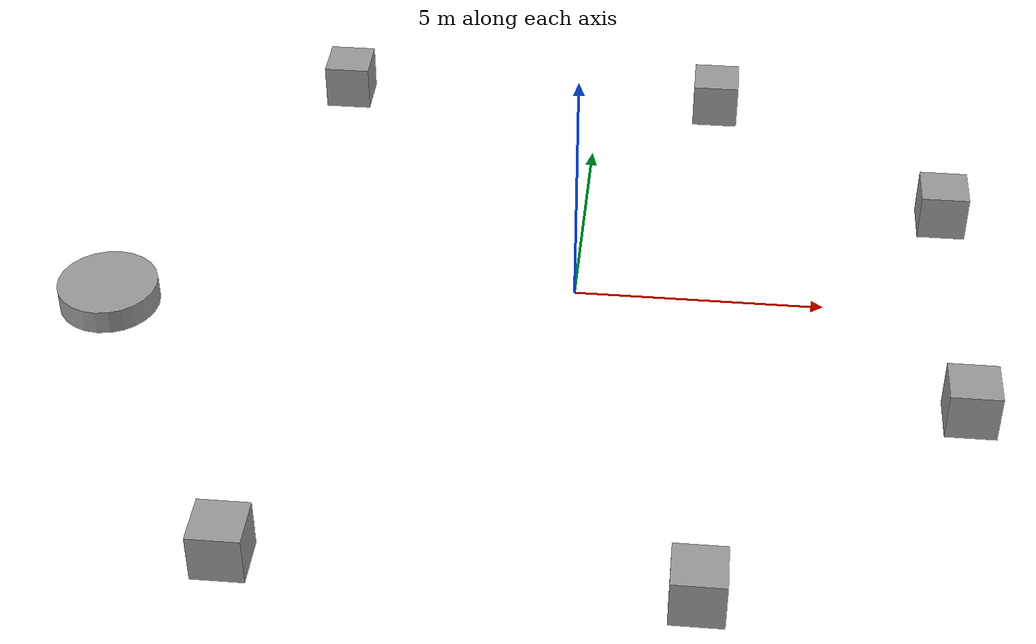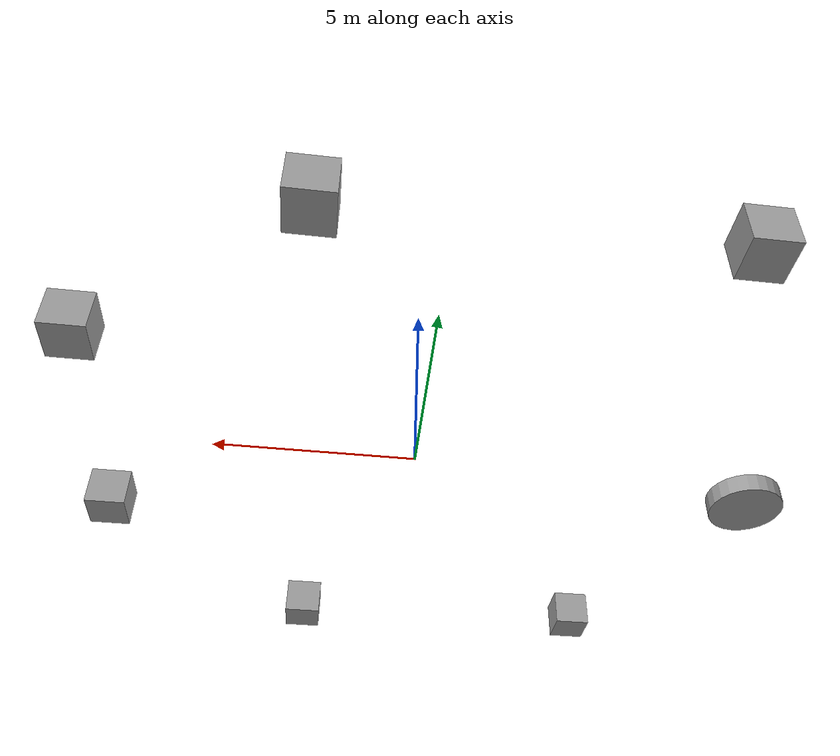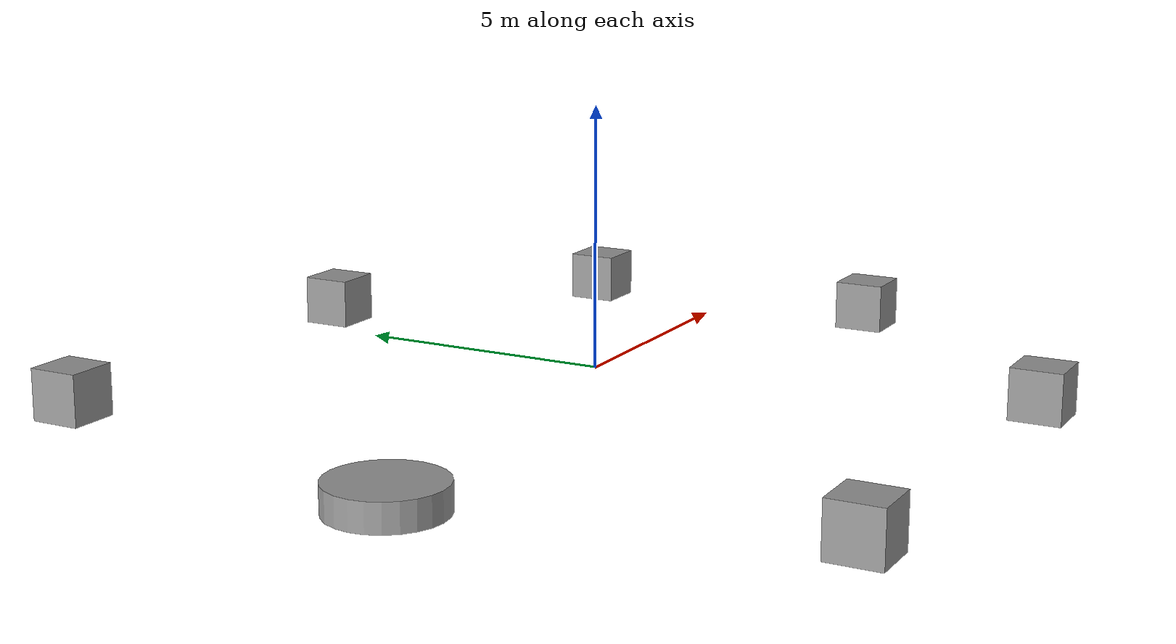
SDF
<?xml version='1.0'?>
<sdf version='1.6'>
  <model name='pickup_points'>
    <link name='link_0'>
      <pose frame=''>-9.23896 -1.4112 0.428571 0 -0 0</pose>
      <inertial>
        <mass>1</mass>
        <inertia>
          <ixx>0.145833</ixx>
          <ixy>0</ixy>
          <ixz>0</ixz>
          <iyy>0.145833</iyy>
          <iyz>0</iyz>
          <izz>0.125</izz>
        </inertia>
        <pose frame=''>0 0 0 0 -0 0</pose>
      </inertial>
      <gravity>1</gravity>
      <self_collide>0</self_collide>
      <kinematic>0</kinematic>
      <visual name='visual'>
        <pose frame=''>0 0 0 0 -0 0</pose>
        <geometry>
          <cylinder>
            <radius>1</radius>
            <length>0.5</length>
          </cylinder>
        </geometry>
        <material>
          <lighting>1</lighting>
          <script>
            <uri>file://media/materials/scripts/gazebo.material</uri>
            <name>Gazebo/Grey</name>
          </script>
          <shader type='pixel'>
            <normal_map>__default__</normal_map>
          </shader>
          <ambient>0.3 0.3 0.3 1</ambient>
          <diffuse>0.7 0.7 0.7 1</diffuse>
          <specular>0.01 0.01 0.01 1</specular>
          <emissive>0 0 0 1</emissive>
        </material>
        <transparency>0</transparency>
        <cast_shadows>1</cast_shadows>
      </visual>
      <collision name='collision'>
        <laser_retro>0</laser_retro>
        <max_contacts>10</max_contacts>
        <pose frame=''>0 0 0 0 -0 0</pose>
        <geometry>
          <cylinder>
            <radius>1</radius>
            <length>0.5</length>
          </cylinder>
        </geometry>
        <surface>
          <friction>
            <ode>
              <mu>1</mu>
              <mu2>1</mu2>
              <fdir1>0 0 0</fdir1>
              <slip1>0</slip1>
              <slip2>0</slip2>
            </ode>
            <torsional>
              <coefficient>1</coefficient>
              <patch_radius>0</patch_radius>
              <surface_radius>0</surface_radius>
              <use_patch_radius>1</use_patch_radius>
              <ode>
                <slip>0</slip>
              </ode>
            </torsional>
          </friction>
          <bounce>
            <restitution_coefficient>0</restitution_coefficient>
            <threshold>1e+06</threshold>
          </bounce>
          <contact>
            <collide_without_contact>0</collide_without_contact>
            <collide_without_contact_bitmask>1</collide_without_contact_bitmask>
            <collide_bitmask>1</collide_bitmask>
            <ode>
              <soft_cfm>0</soft_cfm>
              <soft_erp>0.2</soft_erp>
              <kp>1e+13</kp>
              <kd>1</kd>
              <max_vel>0.01</max_vel>
              <min_depth>0</min_depth>
            </ode>
            <bullet>
              <split_impulse>1</split_impulse>
              <split_impulse_penetration_threshold>-0.01</split_impulse_penetration_threshold>
              <soft_cfm>0</soft_cfm>
              <soft_erp>0.2</soft_erp>
              <kp>1e+13</kp>
              <kd>1</kd>
            </bullet>
          </contact>
        </surface>
      </collision>
    </link>
    <link name='link_1_clone_3_clone'>
      <pose frame=''>2.74859 -7.82521 -0.071429 0 -0 0</pose>
      <inertial>
        <mass>1</mass>
        <inertia>
          <ixx>0.166667</ixx>
          <ixy>0</ixy>
          <ixz>0</ixz>
          <iyy>0.166667</iyy>
          <iyz>0</iyz>
          <izz>0.166667</izz>
        </inertia>
        <pose frame=''>0 0 0 0 -0 0</pose>
      </inertial>
      <self_collide>0</self_collide>
      <kinematic>0</kinematic>
      <visual name='visual'>
        <pose frame=''>0 0 0 0 -0 0</pose>
        <geometry>
          <box>
            <size>1 1 1</size>
          </box>
        </geometry>
        <material>
          <lighting>1</lighting>
          <script>
            <uri>file://media/materials/scripts/gazebo.material</uri>
            <name>Gazebo/Grey</name>
          </script>
          <shader type='pixel'>
            <normal_map>__default__</normal_map>
          </shader>
          <ambient>0.3 0.3 0.3 1</ambient>
          <diffuse>0.7 0.7 0.7 1</diffuse>
          <specular>0.01 0.01 0.01 1</specular>
          <emissive>0 0 0 1</emissive>
        </material>
        <transparency>0</transparency>
        <cast_shadows>1</cast_shadows>
      </visual>
      <collision name='collision'>
        <laser_retro>0</laser_retro>
        <max_contacts>10</max_contacts>
        <pose frame=''>0 0 0 0 -0 0</pose>
        <geometry>
          <box>
            <size>1 1 1</size>
          </box>
        </geometry>
        <surface>
          <friction>
            <ode>
              <mu>1</mu>
              <mu2>1</mu2>
              <fdir1>0 0 0</fdir1>
              <slip1>0</slip1>
              <slip2>0</slip2>
            </ode>
            <torsional>
              <coefficient>1</coefficient>
              <patch_radius>0</patch_radius>
              <surface_radius>0</surface_radius>
              <use_patch_radius>1</use_patch_radius>
              <ode>
                <slip>0</slip>
              </ode>
            </torsional>
          </friction>
          <bounce>
            <restitution_coefficient>0</restitution_coefficient>
            <threshold>1e+06</threshold>
          </bounce>
          <contact>
            <collide_without_contact>0</collide_without_contact>
            <collide_without_contact_bitmask>1</collide_without_contact_bitmask>
            <collide_bitmask>1</collide_bitmask>
            <ode>
              <soft_cfm>0</soft_cfm>
              <soft_erp>0.2</soft_erp>
              <kp>1e+13</kp>
              <kd>1</kd>
              <max_vel>0.01</max_vel>
              <min_depth>0</min_depth>
            </ode>
            <bullet>
              <split_impulse>1</split_impulse>
              <split_impulse_penetration_threshold>-0.01</split_impulse_penetration_threshold>
              <soft_cfm>0</soft_cfm>
              <soft_erp>0.2</soft_erp>
              <kp>1e+13</kp>
              <kd>1</kd>
            </bullet>
          </contact>
        </surface>
      </collision>
    </link>
    <link name='link_1_clone_3_clone_clone'>
      <pose frame=''>7.79607 -2.52126 -0.071429 0 -0 0</pose>
      <inertial>
        <mass>1</mass>
        <inertia>
          <ixx>0.166667</ixx>
          <ixy>0</ixy>
          <ixz>0</ixz>
          <iyy>0.166667</iyy>
          <iyz>0</iyz>
          <izz>0.166667</izz>
        </inertia>
        <pose frame=''>0 0 0 0 -0 0</pose>
      </inertial>
      <self_collide>0</self_collide>
      <kinematic>0</kinematic>
      <visual name='visual'>
        <pose frame=''>0 0 0 0 -0 0</pose>
        <geometry>
          <box>
            <size>1 1 1</size>
          </box>
        </geometry>
        <material>
          <lighting>1</lighting>
          <script>
            <uri>file://media/materials/scripts/gazebo.material</uri>
            <name>Gazebo/Grey</name>
          </script>
          <shader type='pixel'>
            <normal_map>__default__</normal_map>
          </shader>
          <ambient>0.3 0.3 0.3 1</ambient>
          <diffuse>0.7 0.7 0.7 1</diffuse>
          <specular>0.01 0.01 0.01 1</specular>
          <emissive>0 0 0 1</emissive>
        </material>
        <transparency>0</transparency>
        <cast_shadows>1</cast_shadows>
      </visual>
      <collision name='collision'>
        <laser_retro>0</laser_retro>
        <max_contacts>10</max_contacts>
        <pose frame=''>0 0 0 0 -0 0</pose>
        <geometry>
          <box>
            <size>1 1 1</size>
          </box>
        </geometry>
        <surface>
          <friction>
            <ode>
              <mu>1</mu>
              <mu2>1</mu2>
              <fdir1>0 0 0</fdir1>
              <slip1>0</slip1>
              <slip2>0</slip2>
            </ode>
            <torsional>
              <coefficient>1</coefficient>
              <patch_radius>0</patch_radius>
              <surface_radius>0</surface_radius>
              <use_patch_radius>1</use_patch_radius>
              <ode>
                <slip>0</slip>
              </ode>
            </torsional>
          </friction>
          <bounce>
            <restitution_coefficient>0</restitution_coefficient>
            <threshold>1e+06</threshold>
          </bounce>
          <contact>
            <collide_without_contact>0</collide_without_contact>
            <collide_without_contact_bitmask>1</collide_without_contact_bitmask>
            <collide_bitmask>1</collide_bitmask>
            <ode>
              <soft_cfm>0</soft_cfm>
              <soft_erp>0.2</soft_erp>
              <kp>1e+13</kp>
              <kd>1</kd>
              <max_vel>0.01</max_vel>
              <min_depth>0</min_depth>
            </ode>
            <bullet>
              <split_impulse>1</split_impulse>
              <split_impulse_penetration_threshold>-0.01</split_impulse_penetration_threshold>
              <soft_cfm>0</soft_cfm>
              <soft_erp>0.2</soft_erp>
              <kp>1e+13</kp>
              <kd>1</kd>
            </bullet>
          </contact>
        </surface>
      </collision>
    </link>
    <link name='link_1_clone_3_clone_clone_0'>
      <pose frame=''>7.6104 3.85384 -0.071429 0 -0 0</pose>
      <inertial>
        <mass>1</mass>
        <inertia>
          <ixx>0.166667</ixx>
          <ixy>0</ixy>
          <ixz>0</ixz>
          <iyy>0.166667</iyy>
          <iyz>0</iyz>
          <izz>0.166667</izz>
        </inertia>
        <pose frame=''>0 0 0 0 -0 0</pose>
      </inertial>
      <self_collide>0</self_collide>
      <kinematic>0</kinematic>
      <visual name='visual'>
        <pose frame=''>0 0 0 0 -0 0</pose>
        <geometry>
          <box>
            <size>1 1 1</size>
          </box>
        </geometry>
        <material>
          <lighting>1</lighting>
          <script>
            <uri>file://media/materials/scripts/gazebo.material</uri>
            <name>Gazebo/Grey</name>
          </script>
          <shader type='pixel'>
            <normal_map>__default__</normal_map>
          </shader>
          <ambient>0.3 0.3 0.3 1</ambient>
          <diffuse>0.7 0.7 0.7 1</diffuse>
          <specular>0.01 0.01 0.01 1</specular>
          <emissive>0 0 0 1</emissive>
        </material>
        <transparency>0</transparency>
        <cast_shadows>1</cast_shadows>
      </visual>
      <collision name='collision'>
        <laser_retro>0</laser_retro>
        <max_contacts>10</max_contacts>
        <pose frame=''>0 0 0 0 -0 0</pose>
        <geometry>
          <box>
            <size>1 1 1</size>
          </box>
        </geometry>
        <surface>
          <friction>
            <ode>
              <mu>1</mu>
              <mu2>1</mu2>
              <fdir1>0 0 0</fdir1>
              <slip1>0</slip1>
              <slip2>0</slip2>
            </ode>
            <torsional>
              <coefficient>1</coefficient>
              <patch_radius>0</patch_radius>
              <surface_radius>0</surface_radius>
              <use_patch_radius>1</use_patch_radius>
              <ode>
                <slip>0</slip>
              </ode>
            </torsional>
          </friction>
          <bounce>
            <restitution_coefficient>0</restitution_coefficient>
            <threshold>1e+06</threshold>
          </bounce>
          <contact>
            <collide_without_contact>0</collide_without_contact>
            <collide_without_contact_bitmask>1</collide_without_contact_bitmask>
            <collide_bitmask>1</collide_bitmask>
            <ode>
              <soft_cfm>0</soft_cfm>
              <soft_erp>0.2</soft_erp>
              <kp>1e+13</kp>
              <kd>1</kd>
              <max_vel>0.01</max_vel>
              <min_depth>0</min_depth>
            </ode>
            <bullet>
              <split_impulse>1</split_impulse>
              <split_impulse_penetration_threshold>-0.01</split_impulse_penetration_threshold>
              <soft_cfm>0</soft_cfm>
              <soft_erp>0.2</soft_erp>
              <kp>1e+13</kp>
              <kd>1</kd>
            </bullet>
          </contact>
        </surface>
      </collision>
    </link>
    <link name='link_1_clone_3_clone_clone_1'>
      <pose frame=''>-5.68813 -7.55465 -0.071429 0 -0 0</pose>
      <inertial>
        <mass>1</mass>
        <inertia>
          <ixx>0.166667</ixx>
          <ixy>0</ixy>
          <ixz>0</ixz>
          <iyy>0.166667</iyy>
          <iyz>0</iyz>
          <izz>0.166667</izz>
        </inertia>
        <pose frame=''>0 0 0 0 -0 0</pose>
      </inertial>
      <self_collide>0</self_collide>
      <kinematic>0</kinematic>
      <visual name='visual'>
        <pose frame=''>0 0 0 0 -0 0</pose>
        <geometry>
          <box>
            <size>1 1 1</size>
          </box>
        </geometry>
        <material>
          <lighting>1</lighting>
          <script>
            <uri>file://media/materials/scripts/gazebo.material</uri>
            <name>Gazebo/Grey</name>
          </script>
          <shader type='pixel'>
            <normal_map>__default__</normal_map>
          </shader>
          <ambient>0.3 0.3 0.3 1</ambient>
          <diffuse>0.7 0.7 0.7 1</diffuse>
          <specular>0.01 0.01 0.01 1</specular>
          <emissive>0 0 0 1</emissive>
        </material>
        <transparency>0</transparency>
        <cast_shadows>1</cast_shadows>
      </visual>
      <collision name='collision'>
        <laser_retro>0</laser_retro>
        <max_contacts>10</max_contacts>
        <pose frame=''>0 0 0 0 -0 0</pose>
        <geometry>
          <box>
            <size>1 1 1</size>
          </box>
        </geometry>
        <surface>
          <friction>
            <ode>
              <mu>1</mu>
              <mu2>1</mu2>
              <fdir1>0 0 0</fdir1>
              <slip1>0</slip1>
              <slip2>0</slip2>
            </ode>
            <torsional>
              <coefficient>1</coefficient>
              <patch_radius>0</patch_radius>
              <surface_radius>0</surface_radius>
              <use_patch_radius>1</use_patch_radius>
              <ode>
                <slip>0</slip>
              </ode>
            </torsional>
          </friction>
          <bounce>
            <restitution_coefficient>0</restitution_coefficient>
            <threshold>1e+06</threshold>
          </bounce>
          <contact>
            <collide_without_contact>0</collide_without_contact>
            <collide_without_contact_bitmask>1</collide_without_contact_bitmask>
            <collide_bitmask>1</collide_bitmask>
            <ode>
              <soft_cfm>0</soft_cfm>
              <soft_erp>0.2</soft_erp>
              <kp>1e+13</kp>
              <kd>1</kd>
              <max_vel>0.01</max_vel>
              <min_depth>0</min_depth>
            </ode>
            <bullet>
              <split_impulse>1</split_impulse>
              <split_impulse_penetration_threshold>-0.01</split_impulse_penetration_threshold>
              <soft_cfm>0</soft_cfm>
              <soft_erp>0.2</soft_erp>
              <kp>1e+13</kp>
              <kd>1</kd>
            </bullet>
          </contact>
        </surface>
      </collision>
    </link>
    <link name='link_1_clone_3_clone_clone_1_clone'>
      <pose frame=''>2.65882 7.74558 -0.071429 0 -0 0</pose>
      <inertial>
        <mass>1</mass>
        <inertia>
          <ixx>0.166667</ixx>
          <ixy>0</ixy>
          <ixz>0</ixz>
          <iyy>0.166667</iyy>
          <iyz>0</iyz>
          <izz>0.166667</izz>
        </inertia>
        <pose frame=''>0 0 0 0 -0 0</pose>
      </inertial>
      <self_collide>0</self_collide>
      <kinematic>0</kinematic>
      <visual name='visual'>
        <pose frame=''>0 0 0 0 -0 0</pose>
        <geometry>
          <box>
            <size>1 1 1</size>
          </box>
        </geometry>
        <material>
          <lighting>1</lighting>
          <script>
            <uri>file://media/materials/scripts/gazebo.material</uri>
            <name>Gazebo/Grey</name>
          </script>
          <shader type='pixel'>
            <normal_map>__default__</normal_map>
          </shader>
          <ambient>0.3 0.3 0.3 1</ambient>
          <diffuse>0.7 0.7 0.7 1</diffuse>
          <specular>0.01 0.01 0.01 1</specular>
          <emissive>0 0 0 1</emissive>
        </material>
        <transparency>0</transparency>
        <cast_shadows>1</cast_shadows>
      </visual>
      <collision name='collision'>
        <laser_retro>0</laser_retro>
        <max_contacts>10</max_contacts>
        <pose frame=''>0 0 0 0 -0 0</pose>
        <geometry>
          <box>
            <size>1 1 1</size>
          </box>
        </geometry>
        <surface>
          <friction>
            <ode>
              <mu>1</mu>
              <mu2>1</mu2>
              <fdir1>0 0 0</fdir1>
              <slip1>0</slip1>
              <slip2>0</slip2>
            </ode>
            <torsional>
              <coefficient>1</coefficient>
              <patch_radius>0</patch_radius>
              <surface_radius>0</surface_radius>
              <use_patch_radius>1</use_patch_radius>
              <ode>
                <slip>0</slip>
              </ode>
            </torsional>
          </friction>
          <bounce>
            <restitution_coefficient>0</restitution_coefficient>
            <threshold>1e+06</threshold>
          </bounce>
          <contact>
            <collide_without_contact>0</collide_without_contact>
            <collide_without_contact_bitmask>1</collide_without_contact_bitmask>
            <collide_bitmask>1</collide_bitmask>
            <ode>
              <soft_cfm>0</soft_cfm>
              <soft_erp>0.2</soft_erp>
              <kp>1e+13</kp>
              <kd>1</kd>
              <max_vel>0.01</max_vel>
              <min_depth>0</min_depth>
            </ode>
            <bullet>
              <split_impulse>1</split_impulse>
              <split_impulse_penetration_threshold>-0.01</split_impulse_penetration_threshold>
              <soft_cfm>0</soft_cfm>
              <soft_erp>0.2</soft_erp>
              <kp>1e+13</kp>
              <kd>1</kd>
            </bullet>
          </contact>
        </surface>
      </collision>
    </link>
    <link name='link_1_clone_3_clone_clone_1_clone_0'>
      <pose frame=''>-5.8868 7.71296 -0.071429 0 -0 0</pose>
      <inertial>
        <mass>1</mass>
        <inertia>
          <ixx>0.166667</ixx>
          <ixy>0</ixy>
          <ixz>0</ixz>
          <iyy>0.166667</iyy>
          <iyz>0</iyz>
          <izz>0.166667</izz>
        </inertia>
        <pose frame=''>0 0 0 0 -0 0</pose>
      </inertial>
      <self_collide>0</self_collide>
      <kinematic>0</kinematic>
      <visual name='visual'>
        <pose frame=''>0 0 0 0 -0 0</pose>
        <geometry>
          <box>
            <size>1 1 1</size>
          </box>
        </geometry>
        <material>
          <lighting>1</lighting>
          <script>
            <uri>file://media/materials/scripts/gazebo.material</uri>
            <name>Gazebo/Grey</name>
          </script>
          <shader type='pixel'>
            <normal_map>__default__</normal_map>
          </shader>
          <ambient>0.3 0.3 0.3 1</ambient>
          <diffuse>0.7 0.7 0.7 1</diffuse>
          <specular>0.01 0.01 0.01 1</specular>
          <emissive>0 0 0 1</emissive>
        </material>
        <transparency>0</transparency>
        <cast_shadows>1</cast_shadows>
      </visual>
      <collision name='collision'>
        <laser_retro>0</laser_retro>
        <max_contacts>10</max_contacts>
        <pose frame=''>0 0 0 0 -0 0</pose>
        <geometry>
          <box>
            <size>1 1 1</size>
          </box>
        </geometry>
        <surface>
          <friction>
            <ode>
              <mu>1</mu>
              <mu2>1</mu2>
              <fdir1>0 0 0</fdir1>
              <slip1>0</slip1>
              <slip2>0</slip2>
            </ode>
            <torsional>
              <coefficient>1</coefficient>
              <patch_radius>0</patch_radius>
              <surface_radius>0</surface_radius>
              <use_patch_radius>1</use_patch_radius>
              <ode>
                <slip>0</slip>
              </ode>
            </torsional>
          </friction>
          <bounce>
            <restitution_coefficient>0</restitution_coefficient>
            <threshold>1e+06</threshold>
          </bounce>
          <contact>
            <collide_without_contact>0</collide_without_contact>
            <collide_without_contact_bitmask>1</collide_without_contact_bitmask>
            <collide_bitmask>1</collide_bitmask>
            <ode>
              <soft_cfm>0</soft_cfm>
              <soft_erp>0.2</soft_erp>
              <kp>1e+13</kp>
              <kd>1</kd>
              <max_vel>0.01</max_vel>
              <min_depth>0</min_depth>
            </ode>
            <bullet>
              <split_impulse>1</split_impulse>
              <split_impulse_penetration_threshold>-0.01</split_impulse_penetration_threshold>
              <soft_cfm>0</soft_cfm>
              <soft_erp>0.2</soft_erp>
              <kp>1e+13</kp>
              <kd>1</kd>
            </bullet>
          </contact>
        </surface>
      </collision>
    </link>
    <static>0</static>
    <allow_auto_disable>1</allow_auto_disable>
  </model>
</sdf>
